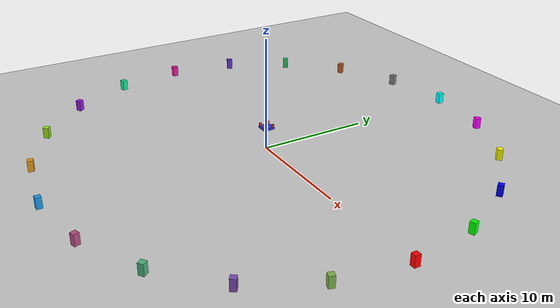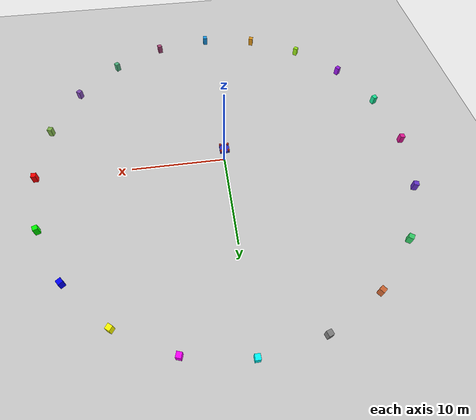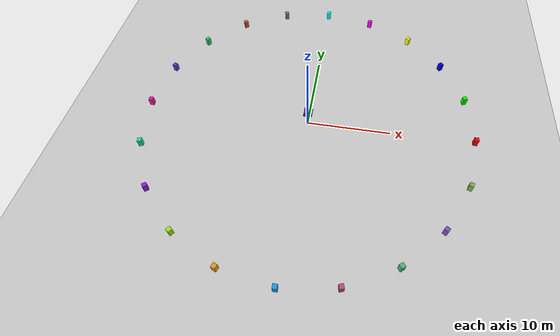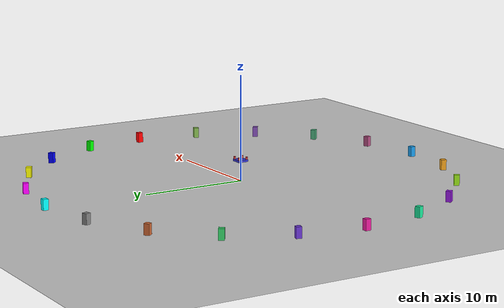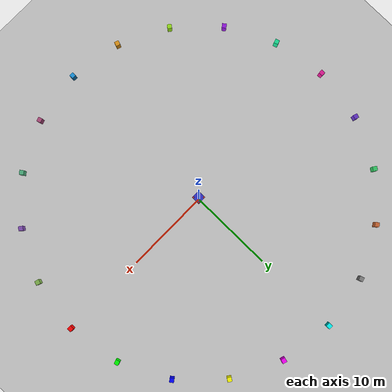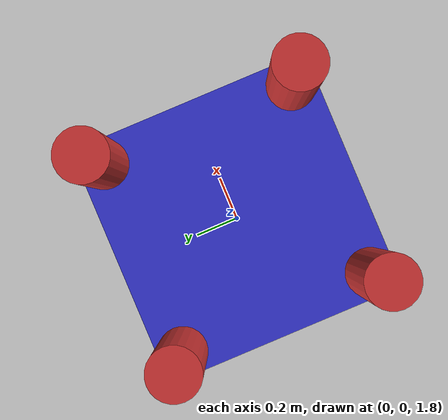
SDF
<?xml version="1.0" ?>
<sdf version="1.8">
  <world name="movable_shapes_world">
  <light type="directional" name="sun">
          <cast_shadows>true</cast_shadows>
          <pose>0 0 10 0 0 0</pose>
          <diffuse>0.8 0.8 0.8 1</diffuse>
          <specular>0.2 0.2 0.2 1</specular>
          <attenuation>
            <range>1000</range>
            <constant>0.9</constant>
            <linear>0.01</linear>
            <quadratic>0.001</quadratic>
          </attenuation>
          <direction>-0.5 0.1 -0.9</direction>
     </light>

    <physics name="1ms" type="ignored">
      <max_step_size>0.01</max_step_size>
      <real_time_factor>1</real_time_factor>
      <real_time_update_rate>100</real_time_update_rate>
    </physics>
    <gravity>0 0 -9.8</gravity>

    <plugin filename="gz-sim-physics-system" name="gz::sim::systems::Physics">
    </plugin>
    <plugin filename="gz-sim-scene-broadcaster-system" name="gz::sim::systems::SceneBroadcaster">
    </plugin>
    <plugin filename="gz-sim-apply-link-wrench-system" name="gz::sim::systems::ApplyLinkWrench">
    </plugin>
    <plugin filename="gz-sim-imu-system" name="gz::sim::systems::Imu"></plugin>
    <plugin filename="gz-sim-sensors-system"
        name="gz::sim::systems::Sensors">
    </plugin>
    <model name="ground_plane">
      <static>true</static>
      <link name="link">
        <collision name="collision">
          <geometry>
            <plane>
              <normal>0 0 1</normal>
              <size>100 100</size>
            </plane>
          </geometry>
        </collision>
        <visual name="visual">
          <geometry>
            <plane>
              <normal>0 0 1</normal>
              <size>100 100</size>
            </plane>
          </geometry>
          <material>
            <ambient>0.8 0.8 0.8 1</ambient>
            <diffuse>0.8 0.8 0.8 1</diffuse>
          </material>
        </visual>
      </link>
    </model>

    <model name="circular_box_0"><static>true</static><pose>20.000 0.000 0.5 0 0 0</pose><link name="link"><collision name="collision"><geometry><box><size>0.5 0.5 1.0</size></box></geometry></collision><visual name="visual"><geometry><box><size>0.5 0.5 1.0</size></box></geometry><material><ambient>1 0 0 1</ambient><diffuse>1 0 0 1</diffuse></material></visual></link></model>
    <model name="circular_box_1"><static>true</static><pose>19.021 6.180 0.5 0 0 0.314</pose><link name="link"><collision name="collision"><geometry><box><size>0.5 0.5 1.0</size></box></geometry></collision><visual name="visual"><geometry><box><size>0.5 0.5 1.0</size></box></geometry><material><ambient>0 1 0 1</ambient><diffuse>0 1 0 1</diffuse></material></visual></link></model>
    <model name="circular_box_2"><static>true</static><pose>16.180 11.756 0.5 0 0 0.628</pose><link name="link"><collision name="collision"><geometry><box><size>0.5 0.5 1.0</size></box></geometry></collision><visual name="visual"><geometry><box><size>0.5 0.5 1.0</size></box></geometry><material><ambient>0 0 1 1</ambient><diffuse>0 0 1 1</diffuse></material></visual></link></model>
    <model name="circular_box_3"><static>true</static><pose>11.756 16.180 0.5 0 0 0.942</pose><link name="link"><collision name="collision"><geometry><box><size>0.5 0.5 1.0</size></box></geometry></collision><visual name="visual"><geometry><box><size>0.5 0.5 1.0</size></box></geometry><material><ambient>1 1 0 1</ambient><diffuse>1 1 0 1</diffuse></material></visual></link></model>
    <model name="circular_box_4"><static>true</static><pose>6.180 19.021 0.5 0 0 1.257</pose><link name="link"><collision name="collision"><geometry><box><size>0.5 0.5 1.0</size></box></geometry></collision><visual name="visual"><geometry><box><size>0.5 0.5 1.0</size></box></geometry><material><ambient>1 0 1 1</ambient><diffuse>1 0 1 1</diffuse></material></visual></link></model>
    <model name="circular_box_5"><static>true</static><pose>0.000 20.000 0.5 0 0 1.571</pose><link name="link"><collision name="collision"><geometry><box><size>0.5 0.5 1.0</size></box></geometry></collision><visual name="visual"><geometry><box><size>0.5 0.5 1.0</size></box></geometry><material><ambient>0 1 1 1</ambient><diffuse>0 1 1 1</diffuse></material></visual></link></model>
    <model name="circular_box_6"><static>true</static><pose>-6.180 19.021 0.5 0 0 1.885</pose><link name="link"><collision name="collision"><geometry><box><size>0.5 0.5 1.0</size></box></geometry></collision><visual name="visual"><geometry><box><size>0.5 0.5 1.0</size></box></geometry><material><ambient>0.5 0.5 0.5 1</ambient><diffuse>0.5 0.5 0.5 1</diffuse></material></visual></link></model>
    <model name="circular_box_7"><static>true</static><pose>-11.756 16.180 0.5 0 0 2.199</pose><link name="link"><collision name="collision"><geometry><box><size>0.5 0.5 1.0</size></box></geometry></collision><visual name="visual"><geometry><box><size>0.5 0.5 1.0</size></box></geometry><material><ambient>0.8 0.4 0.2 1</ambient><diffuse>0.8 0.4 0.2 1</diffuse></material></visual></link></model>
    <model name="circular_box_8"><static>true</static><pose>-16.180 11.756 0.5 0 0 2.513</pose><link name="link"><collision name="collision"><geometry><box><size>0.5 0.5 1.0</size></box></geometry></collision><visual name="visual"><geometry><box><size>0.5 0.5 1.0</size></box></geometry><material><ambient>0.2 0.8 0.4 1</ambient><diffuse>0.2 0.8 0.4 1</diffuse></material></visual></link></model>
    <model name="circular_box_9"><static>true</static><pose>-19.021 6.180 0.5 0 0 2.827</pose><link name="link"><collision name="collision"><geometry><box><size>0.5 0.5 1.0</size></box></geometry></collision><visual name="visual"><geometry><box><size>0.5 0.5 1.0</size></box></geometry><material><ambient>0.4 0.2 0.8 1</ambient><diffuse>0.4 0.2 0.8 1</diffuse></material></visual></link></model>
    <model name="circular_box_10"><static>true</static><pose>-20.000 0.000 0.5 0 0 3.142</pose><link name="link"><collision name="collision"><geometry><box><size>0.5 0.5 1.0</size></box></geometry></collision><visual name="visual"><geometry><box><size>0.5 0.5 1.0</size></box></geometry><material><ambient>0.9 0.1 0.6 1</ambient><diffuse>0.9 0.1 0.6 1</diffuse></material></visual></link></model>
    <model name="circular_box_11"><static>true</static><pose>-19.021 -6.180 0.5 0 0 3.456</pose><link name="link"><collision name="collision"><geometry><box><size>0.5 0.5 1.0</size></box></geometry></collision><visual name="visual"><geometry><box><size>0.5 0.5 1.0</size></box></geometry><material><ambient>0.1 0.9 0.6 1</ambient><diffuse>0.1 0.9 0.6 1</diffuse></material></visual></link></model>
    <model name="circular_box_12"><static>true</static><pose>-16.180 -11.756 0.5 0 0 3.770</pose><link name="link"><collision name="collision"><geometry><box><size>0.5 0.5 1.0</size></box></geometry></collision><visual name="visual"><geometry><box><size>0.5 0.5 1.0</size></box></geometry><material><ambient>0.6 0.1 0.9 1</ambient><diffuse>0.6 0.1 0.9 1</diffuse></material></visual></link></model>
    <model name="circular_box_13"><static>true</static><pose>-11.756 -16.180 0.5 0 0 4.084</pose><link name="link"><collision name="collision"><geometry><box><size>0.5 0.5 1.0</size></box></geometry></collision><visual name="visual"><geometry><box><size>0.5 0.5 1.0</size></box></geometry><material><ambient>0.6 0.9 0.1 1</ambient><diffuse>0.6 0.9 0.1 1</diffuse></material></visual></link></model>
    <model name="circular_box_14"><static>true</static><pose>-6.180 -19.021 0.5 0 0 4.398</pose><link name="link"><collision name="collision"><geometry><box><size>0.5 0.5 1.0</size></box></geometry></collision><visual name="visual"><geometry><box><size>0.5 0.5 1.0</size></box></geometry><material><ambient>0.9 0.6 0.1 1</ambient><diffuse>0.9 0.6 0.1 1</diffuse></material></visual></link></model>
    <model name="circular_box_15"><static>true</static><pose>0.000 -20.000 0.5 0 0 4.712</pose><link name="link"><collision name="collision"><geometry><box><size>0.5 0.5 1.0</size></box></geometry></collision><visual name="visual"><geometry><box><size>0.5 0.5 1.0</size></box></geometry><material><ambient>0.1 0.6 0.9 1</ambient><diffuse>0.1 0.6 0.9 1</diffuse></material></visual></link></model>
    <model name="circular_box_16"><static>true</static><pose>6.180 -19.021 0.5 0 0 5.027</pose><link name="link"><collision name="collision"><geometry><box><size>0.5 0.5 1.0</size></box></geometry></collision><visual name="visual"><geometry><box><size>0.5 0.5 1.0</size></box></geometry><material><ambient>0.7 0.3 0.5 1</ambient><diffuse>0.7 0.3 0.5 1</diffuse></material></visual></link></model>
    <model name="circular_box_17"><static>true</static><pose>11.756 -16.180 0.5 0 0 5.341</pose><link name="link"><collision name="collision"><geometry><box><size>0.5 0.5 1.0</size></box></geometry></collision><visual name="visual"><geometry><box><size>0.5 0.5 1.0</size></box></geometry><material><ambient>0.3 0.7 0.5 1</ambient><diffuse>0.3 0.7 0.5 1</diffuse></material></visual></link></model>
    <model name="circular_box_18"><static>true</static><pose>16.180 -11.756 0.5 0 0 5.655</pose><link name="link"><collision name="collision"><geometry><box><size>0.5 0.5 1.0</size></box></geometry></collision><visual name="visual"><geometry><box><size>0.5 0.5 1.0</size></box></geometry><material><ambient>0.5 0.3 0.7 1</ambient><diffuse>0.5 0.3 0.7 1</diffuse></material></visual></link></model>
    <model name="circular_box_19"><static>true</static><pose>19.021 -6.180 0.5 0 0 5.969</pose><link name="link"><collision name="collision"><geometry><box><size>0.5 0.5 1.0</size></box></geometry></collision><visual name="visual"><geometry><box><size>0.5 0.5 1.0</size></box></geometry><material><ambient>0.5 0.7 0.3 1</ambient><diffuse>0.5 0.7 0.3 1</diffuse></material></visual></link></model>

    <!-- Quadcopter Model -->
    <model name="quadcopter">
      <pose>0 0 2 0 0 0</pose>

      <!-- Central Block -->
      <link name="base_link">
        <inertial>
          <mass>0.027</mass>
          <inertia>
            <ixx>1.395e-5</ixx>
            <ixy>0</ixy>
            <ixz>0</ixz>
            <iyy>1.395e-5</iyy>
            <iyz>0</iyz>
            <izz>2.173e-5</izz>
          </inertia>
        </inertial>
        <collision name="base_collision">
          <geometry>
            <box>
              <size>1 1 0.2</size>
            </box>
          </geometry>
        </collision>
        <visual name="base_visual">
          <geometry>
            <box>
              <size>1 1 0.2</size>
            </box>
          </geometry>
          <material>
            <ambient>0.2 0.2 0.8 1</ambient>
            <diffuse>0.2 0.2 0.8 1</diffuse>
          </material>
        </visual>
        <sensor name="imu_sensor" type="imu">
          <always_on>1</always_on>
          <update_rate>50</update_rate>
          <visualize>true</visualize>
          <topic>/imu/data</topic>
        </sensor>
        <sensor name="mono_camera" type="camera">
        <pose>0.3 0 0.05 0 0 0</pose>
        <camera>
          <horizontal_fov>1.5708</horizontal_fov>
          <image>
            <width>640</width>
            <height>480</height>
            <format>L8</format>
          </image>
          <clip>
            <near>0.1</near>
            <far>100</far>
          </clip>
        </camera>
        <always_on>1</always_on>
        <update_rate>30</update_rate>
      </sensor>
         <sensor name="mono1_camera" type="camera">
        <pose>0.3 0 0.05 0 1.5708  0</pose>
        <camera>
          <horizontal_fov>1.5708</horizontal_fov>
          <image>
            <width>640</width>
            <height>480</height>
            <format>L8</format>
          </image>
          <clip>
            <near>0.1</near>
            <far>100</far>
          </clip>
        </camera>
        <always_on>1</always_on>
        <update_rate>30</update_rate>
      </sensor>
      </link>

      <!-- Propeller Front-Left -->
      <link name="prop_fl">
        <pose>0.4 0.4 0.15 0 0 0</pose>
        <inertial>
          <mass>0.001</mass>
           <inertia>
            <ixx>1.395e-9</ixx>
            <ixy>0</ixy>
            <ixz>0</ixz>
            <iyy>1.395e-9</iyy>
            <iyz>0</iyz>
            <izz>2.173e-9</izz>
          </inertia>
        </inertial>
        <collision name="prop_fl_collision">
          <geometry>
            <cylinder>
              <radius>0.1</radius>
              <length>0.4</length>
            </cylinder>
          </geometry>
        </collision>
        <visual name="prop_fl_visual">
          <geometry>
            <cylinder>
              <radius>0.1</radius>
              <length>0.4</length>
            </cylinder>
          </geometry>
          <material>
            <ambient>0.8 0.2 0.2 1</ambient>
            <diffuse>0.8 0.2 0.2 1</diffuse>
          </material>
        </visual>
      </link>

      <!-- Propeller Front-Right -->
      <link name="prop_fr">
        <pose>0.4 -0.4 0.15 0 0 0</pose>
        <inertial>
          <mass>0.001</mass>
          <inertia>
            <ixx>1.395e-9</ixx>
            <ixy>0</ixy>
            <ixz>0</ixz>
            <iyy>1.395e-9</iyy>
            <iyz>0</iyz>
            <izz>2.173e-9</izz>
          </inertia>
        </inertial>
        <collision name="prop_fr_collision">
          <geometry>
            <cylinder>
              <radius>0.1</radius>
              <length>0.4</length>
            </cylinder>
          </geometry>
        </collision>
        <visual name="prop_fr_visual">
          <geometry>
            <cylinder>
              <radius>0.1</radius>
              <length>0.4</length>
            </cylinder>
          </geometry>
          <material>
            <ambient>0.8 0.2 0.2 1</ambient>
            <diffuse>0.8 0.2 0.2 1</diffuse>
          </material>
        </visual>
      </link>

      <!-- Propeller Back-Left -->
      <link name="prop_bl">
        <pose>-0.4 0.4 0.15 0 0 0</pose>
        <inertial>
          <mass>0.001</mass>
          <inertia>
            <ixx>1.395e-9</ixx>
            <ixy>0</ixy>
            <ixz>0</ixz>
            <iyy>1.395e-9</iyy>
            <iyz>0</iyz>
            <izz>2.173e-9</izz>
          </inertia>
        </inertial>
        <collision name="prop_bl_collision">
          <geometry>
            <cylinder>
              <radius>0.1</radius>
              <length>0.4</length>
            </cylinder>
          </geometry>
        </collision>
        <visual name="prop_bl_visual">
          <geometry>
            <cylinder>
              <radius>0.1</radius>
              <length>0.4</length>
            </cylinder>
          </geometry>
          <material>
            <ambient>0.8 0.2 0.2 1</ambient>
            <diffuse>0.8 0.2 0.2 1</diffuse>
          </material>
        </visual>
      </link>

      <!-- Propeller Back-Right -->
      <link name="prop_br">
        <pose>-0.4 -0.4 0.15 0 0 0</pose>
        <inertial>
          <mass>0.001</mass>
          <inertia>
            <ixx>1.395e-9</ixx>
            <ixy>0</ixy>
            <ixz>0</ixz>
            <iyy>1.395e-9</iyy>
            <iyz>0</iyz>
            <izz>2.173e-9</izz>
          </inertia>
        </inertial>
        <collision name="prop_br_collision">
          <geometry>
            <cylinder>
              <radius>0.1</radius>
              <length>0.4</length>
            </cylinder>
          </geometry>
        </collision>
        <visual name="prop_br_visual">
          <geometry>
            <cylinder>
              <radius>0.1</radius>
              <length>0.4</length>
            </cylinder>
          </geometry>
          <material>
            <ambient>0.8 0.2 0.2 1</ambient>
            <diffuse>0.8 0.2 0.2 1</diffuse>
          </material>
        </visual>
      </link>

      <!-- Fixed Joints -->
      <joint name="joint_fl" type="fixed">
        <parent>base_link</parent>
        <child>prop_fl</child>
      </joint>
      <joint name="joint_fr" type="fixed">
        <parent>base_link</parent>
        <child>prop_fr</child>
      </joint>
      <joint name="joint_bl" type="fixed">
        <parent>base_link</parent>
        <child>prop_bl</child>
      </joint>
      <joint name="joint_br" type="fixed">
        <parent>base_link</parent>
        <child>prop_br</child>
      </joint>

      <!-- Pose Publisher Plugin -->
      <plugin filename="libgz-sim-pose-publisher-system.so"
              name="gz::sim::systems::PosePublisher">
        <publish_world_pose>true</publish_world_pose>
        <update_rate>50</update_rate>
      </plugin>
      <!-- Odometry Publisher Plugin -->
      <plugin filename="libgz-sim-odometry-publisher-system.so"
              name="gz::sim::systems::OdometryPublisher">
        <odom_publish_frequency>100</odom_publish_frequency>
         <dimensions>3</dimensions>
         <robot_base_frame>base_link</robot_base_frame>

      </plugin>

    </model>

  </world>
</sdf>
